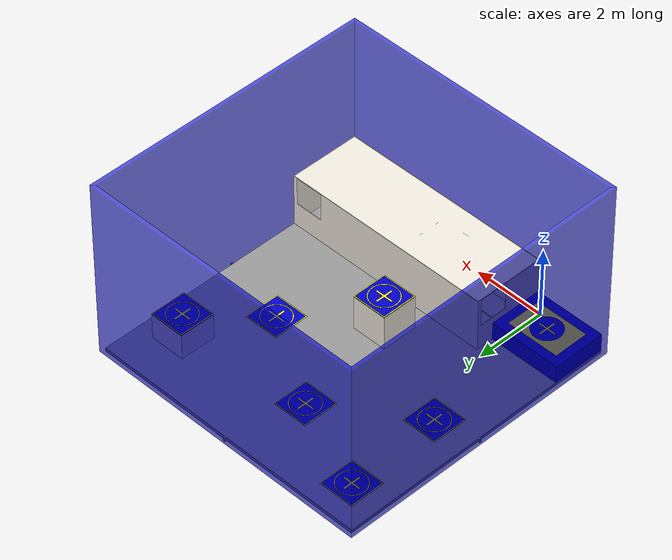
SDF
<sdf version="1.6">
 <world name="default">
  <spherical_coordinates>
   <surface_model>EARTH_WGS84</surface_model>
   <latitude_deg>47.397743</latitude_deg>
   <longitude_deg>8.545594</longitude_deg>
   <elevation>0.0</elevation>
   <heading_deg>0</heading_deg>
  </spherical_coordinates>
  <light type="directional" name="sun">
   <pose>0 0 10 0 0 0</pose>
   <diffuse>0.8 0.8 0.8 1</diffuse>
   <specular>0.2 0.2 0.2 1</specular>
   <attenuation>
    <range>1000</range>
    <constant>0.9</constant>
    <linear>0.01</linear>
    <quadratic>0.001</quadratic>
   </attenuation>
   <direction>-0.5 0.1 -0.9</direction>
  </light>
  <include>
   <uri>file:///home/lmnr31/ros2_ws/src/arena_2025_desenho_3/model.sdf</uri>
   <name>arena_2025_desenho</name>
  </include>
  <physics name="default_physics" type="ode">
   <max_step_size>0.005</max_step_size>
   <real_time_update_rate>200</real_time_update_rate>
  </physics>
 </world>
</sdf>

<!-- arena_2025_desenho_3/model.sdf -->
<sdf version='1.11'>
  <model name='arena_2025_desenho_3'>
    <link name='base_link'>
      <inertial>
        <pose>2.0846047956675839 3.7499959151189981 1.663143852943622 0 0 0</pose>
        <mass>209967.48191385559</mass>
        <inertia>
          <ixx>2447681.3000306399</ixx>
          <ixy>-142412.0459168698</ixy>
          <ixz>-23062.383835287299</ixz>
          <iyy>2426001.3580376571</iyy>
          <iyz>-48729.864840402966</iyz>
          <izz>3761436.7678839881</izz>
        </inertia>
      </inertial>
      <collision name='base_link_collision_collision'>
        <pose>0 0 0 0 0 0</pose>
        <geometry>
          <mesh>
            <scale>0.001 0.001 0.001</scale>
            <uri>meshes/base_link.stl</uri>
          </mesh>
        </geometry>
      </collision>
      <collision name='base_link_fixed_joint_lump__parede1_collision_collision_1'>
        <pose>-1.8502115568123969 -0.041793670335398492 -1.387778780781446e-17 0 0 0</pose>
        <geometry>
          <mesh>
            <scale>0.001 0.001 0.001</scale>
            <uri>meshes/parede1.stl</uri>
          </mesh>
        </geometry>
      </collision>
      <collision name='base_link_fixed_joint_lump__parede4_collision_collision_2'>
        <pose>-1.8502115568123969 -0.041793670335399817 -2.4355517602714372e-15 0 0 0</pose>
        <geometry>
          <mesh>
            <scale>0.001 0.001 0.001</scale>
            <uri>meshes/parede4.stl</uri>
          </mesh>
        </geometry>
      </collision>
      <collision name='base_link_fixed_joint_lump__parede3_collision_collision_3'>
        <pose>-1.8502115568123969 -0.041793670335398943 1.117161918529064e-15 1.224646799147353e-16 -7.4987989133092894e-33 1.224646799147353e-16</pose>
        <geometry>
          <mesh>
            <scale>0.001 0.001 0.001</scale>
            <uri>meshes/parede3.stl</uri>
          </mesh>
        </geometry>
      </collision>
      <collision name='base_link_fixed_joint_lump__parede2_collision_collision_4'>
        <pose>-1.8502115568123969 -0.041793670335398478 -1.387778780781446e-17 0 0 0</pose>
        <geometry>
          <mesh>
            <scale>0.001 0.001 0.001</scale>
            <uri>meshes/parede2.stl</uri>
          </mesh>
        </geometry>
      </collision>
      <collision name='base_link_fixed_joint_lump__Takeoff_Baseazul_collision_collision_5'>
        <pose>-1.8502115568123969 -0.041793670335398492 2.9143354396410359e-16 0 0 0</pose>
        <geometry>
          <mesh>
            <scale>0.001 0.001 0.001</scale>
            <uri>meshes/Takeoff_Baseazul.stl</uri>
          </mesh>
        </geometry>
      </collision>
      <collision name='base_link_fixed_joint_lump__Takeoff_Baseamarelo_collision_collision_6'>
        <pose>-1.8502115568123969 -0.041793670335398492 3.6082248300317588e-16 0 0 0</pose>
        <geometry>
          <mesh>
            <scale>0.001 0.001 0.001</scale>
            <uri>meshes/Takeoff_Baseamarelo.stl</uri>
          </mesh>
        </geometry>
      </collision>
      <collision name='base_link_fixed_joint_lump__casa_paredes_collision_collision_7'>
        <pose>-1.850211556812398 -0.041793670335398492 0 0 0 0</pose>
        <geometry>
          <mesh>
            <scale>0.001 0.001 0.001</scale>
            <uri>meshes/casa_paredes.stl</uri>
          </mesh>
        </geometry>
      </collision>
      <collision name='base_link_fixed_joint_lump__casa_teto_collision_collision_8'>
        <pose>-1.8502115568123949 -0.041793670335397937 1.110223024625157e-16 0 0 0</pose>
        <geometry>
          <mesh>
            <scale>0.001 0.001 0.001</scale>
            <uri>meshes/casa_teto.stl</uri>
          </mesh>
        </geometry>
      </collision>
      <collision name='base_link_fixed_joint_lump__Landing_Basesazul5_collision_collision_9'>
        <pose>-2.8502115568123791 1.4582063296646099 2.9143354396410359e-16 0 0 0</pose>
        <geometry>
          <mesh>
            <scale>0.001 0.001 0.001</scale>
            <uri>meshes/Landing_Basesazul5.stl</uri>
          </mesh>
        </geometry>
      </collision>
      <collision name='base_link_fixed_joint_lump__Landing_Basesamarelo_5_collision_collision_10'>
        <pose>-2.8502115568123969 1.458206329664602 2.9143354396410359e-16 0 0 0</pose>
        <geometry>
          <mesh>
            <scale>0.001 0.001 0.001</scale>
            <uri>meshes/Landing_Basesamarelo_5.stl</uri>
          </mesh>
        </geometry>
      </collision>
      <collision name='base_link_fixed_joint_lump__base_movelzinza1_collision_collision_11'>
        <pose>4.1497884431876093 3.4582063296646179 -0.00099999999999994538 0 0 0</pose>
        <geometry>
          <mesh>
            <scale>0.001 0.001 0.001</scale>
            <uri>meshes/base_movelzinza1.stl</uri>
          </mesh>
        </geometry>
      </collision>
      <collision name='base_link_fixed_joint_lump__Landing_Basesazul1_collision_collision_12'>
        <pose>4.149788443187612 3.458206329664625 1.490116363633831e-11 0 0 0</pose>
        <geometry>
          <mesh>
            <scale>0.001 0.001 0.001</scale>
            <uri>meshes/Landing_Basesazul1.stl</uri>
          </mesh>
        </geometry>
      </collision>
      <collision name='base_link_fixed_joint_lump__Landing_Basesamarelo_1_collision_collision_13'>
        <pose>4.1497884431876164 3.4582063296646361 1.490116363633831e-11 0 0 0</pose>
        <geometry>
          <mesh>
            <scale>0.001 0.001 0.001</scale>
            <uri>meshes/Landing_Basesamarelo_1.stl</uri>
          </mesh>
        </geometry>
      </collision>
      <collision name='base_link_fixed_joint_lump__base_movelzinza2_collision_collision_14'>
        <pose>-2.3502115568123969 -3.541793670335398 -0.00099999999999994538 0 0 0</pose>
        <geometry>
          <mesh>
            <scale>0.001 0.001 0.001</scale>
            <uri>meshes/base_movelzinza2.stl</uri>
          </mesh>
        </geometry>
      </collision>
      <collision name='base_link_fixed_joint_lump__Landing_Basesazul2_collision_collision_15'>
        <pose>-2.3502115568123911 -3.5417936703353892 -0.0010000160932540909 0 0 1.9721522630525321e-31</pose>
        <geometry>
          <mesh>
            <scale>0.001 0.001 0.001</scale>
            <uri>meshes/Landing_Basesazul2.stl</uri>
          </mesh>
        </geometry>
      </collision>
      <collision name='base_link_fixed_joint_lump__Landing_Basesamarelo_2_collision_collision_16'>
        <pose>-2.3502115568123871 -3.5417936703353829 -0.0010000160932540909 0 0 -5.9164567891575999e-31</pose>
        <geometry>
          <mesh>
            <scale>0.001 0.001 0.001</scale>
            <uri>meshes/Landing_Basesamarelo_2.stl</uri>
          </mesh>
        </geometry>
      </collision>
      <collision name='base_link_fixed_joint_lump__Landing_Basesazul6_collision_collision_17'>
        <pose>-3.3502115568123778 4.8702063296646063 -1.5 0 0 0</pose>
        <geometry>
          <mesh>
            <scale>0.001 0.001 0.001</scale>
            <uri>meshes/Landing_Basesazul6.stl</uri>
          </mesh>
        </geometry>
      </collision>
      <collision name='base_link_fixed_joint_lump__Landing_Basesamarelo_6_collision_collision_18'>
        <pose>-3.3502115568123769 4.8702063296646063 -1.5009999999999999 0 0 0</pose>
        <geometry>
          <mesh>
            <scale>0.001 0.001 0.001</scale>
            <uri>meshes/Landing_Basesamarelo_6.stl</uri>
          </mesh>
        </geometry>
      </collision>
      <collision name='base_link_fixed_joint_lump__Landing_Basesazul4_collision_collision_19'>
        <pose>-4.7502115568123973 -0.2417936703353982 2.9143354396410359e-16 0 0 0</pose>
        <geometry>
          <mesh>
            <scale>0.001 0.001 0.001</scale>
            <uri>meshes/Landing_Basesazul4.stl</uri>
          </mesh>
        </geometry>
      </collision>
      <collision name='base_link_fixed_joint_lump__Landing_Basesamarelo_4_collision_collision_20'>
        <pose>-4.7502115568123973 -0.2417936703353982 2.9143354396410359e-16 0 0 0</pose>
        <geometry>
          <mesh>
            <scale>0.001 0.001 0.001</scale>
            <uri>meshes/Landing_Basesamarelo_4.stl</uri>
          </mesh>
        </geometry>
      </collision>
      <collision name='base_link_fixed_joint_lump__Landing_Basesazul3_collision_collision_21'>
        <pose>-2.3502115568123969 0.95820632966460195 2.9143354396410359e-16 0 0 0</pose>
        <geometry>
          <mesh>
            <scale>0.001 0.001 0.001</scale>
            <uri>meshes/Landing_Basesazul3.stl</uri>
          </mesh>
        </geometry>
      </collision>
      <collision name='base_link_fixed_joint_lump__Landing_Basesamarelo_3_collision_collision_22'>
        <pose>-2.3502115568123969 0.95820632966460195 2.7755575615628909e-16 0 0 0</pose>
        <geometry>
          <mesh>
            <scale>0.001 0.001 0.001</scale>
            <uri>meshes/Landing_Basesamarelo_3.stl</uri>
          </mesh>
        </geometry>
      </collision>

      #visuals cores

      <visual name='base_link_visual_visual'>
        <pose>0 0 0 0 0 0</pose>
        <geometry>
          <mesh>
            <scale>0.001 0.001 0.001</scale>
            <uri>meshes/base_link.stl</uri>
          </mesh>
        </geometry>
        <material>
          <ambient>0.4 0.4 0.4 1</ambient>
          <diffuse>0.6 0.6 0.6 1</diffuse>
          <specular>0.8 0.8 0.8 1</specular>
        </material>
      </visual>
      <visual name='base_link_fixed_joint_lump__parede1_visual_visual_1'>
        <pose>-1.8502115568123969 -0.041793670335398492 -1.387778780781446e-17 0 0 0</pose>
        <geometry>
          <mesh>
            <scale>0.001 0.001 0.001</scale>
            <uri>meshes/parede1.stl</uri>
          </mesh>
        </geometry>
        <material>
          <ambient>0.0 0.0 0.5 0.65</ambient>
          <diffuse>0.0 0.0 0.8 0.65</diffuse>
          <specular>0.3 0.3 0.8 0.65</specular>
          <transparency>0.65</transparency>
        </material>
      </visual>
      <visual name='base_link_fixed_joint_lump__parede4_visual_visual_2'>
        <pose>-1.8502115568123969 -0.041793670335399817 -2.4355517602714372e-15 0 0 0</pose>
        <geometry>
          <mesh>
            <scale>0.001 0.001 0.001</scale>
            <uri>meshes/parede4.stl</uri>
          </mesh>
        </geometry>
        <material>
          <ambient>0.0 0.0 0.5 0.65</ambient>
          <diffuse>0.0 0.0 0.8 0.65</diffuse>
          <specular>0.3 0.3 0.8 0.65</specular>
          <transparency>0.65</transparency>
        </material>
      </visual>
      <visual name='base_link_fixed_joint_lump__parede3_visual_visual_3'>
        <pose>-1.8502115568123969 -0.041793670335398943 1.117161918529064e-15 1.224646799147353e-16 -7.4987989133092894e-33 1.224646799147353e-16</pose>
        <geometry>
          <mesh>
            <scale>0.001 0.001 0.001</scale>
            <uri>meshes/parede3.stl</uri>
          </mesh>
        </geometry>
        <material>
          <ambient>0.0 0.0 0.5 0.65</ambient>
          <diffuse>0.0 0.0 0.8 0.65</diffuse>
          <specular>0.3 0.3 0.8 0.65</specular>
          <transparency>0.65</transparency>
        </material>
      </visual>
      <visual name='base_link_fixed_joint_lump__parede2_visual_visual_4'>
        <pose>-1.8502115568123969 -0.041793670335398478 -1.387778780781446e-17 0 0 0</pose>
        <geometry>
          <mesh>
            <scale>0.001 0.001 0.001</scale>
            <uri>meshes/parede2.stl</uri>
          </mesh>
        </geometry>
        <material>
          <ambient>0.0 0.0 0.5 0.65</ambient>
          <diffuse>0.0 0.0 0.8 0.65</diffuse>
          <specular>0.3 0.3 0.8 0.65</specular>
          <transparency>0.65</transparency>
        </material>
      </visual>
      <visual name='base_link_fixed_joint_lump__Takeoff_Baseazul_visual_visual_5'>
        <pose>-1.8502115568123969 -0.041793670335398492 2.9143354396410359e-16 0 0 0</pose>
        <geometry>
          <mesh>
            <scale>0.001 0.001 0.001</scale>
            <uri>meshes/Takeoff_Baseazul.stl</uri>
          </mesh>
        </geometry>
        <material>
          <ambient>0.0 0.0 0.5 1</ambient>
          <diffuse>0.0 0.0 0.8 1</diffuse>
          <specular>0.3 0.3 0.8 1</specular>
        </material>
      </visual>
      <visual name='base_link_fixed_joint_lump__Takeoff_Baseamarelo_visual_visual_6'>
        <pose>-1.8502115568123969 -0.041793670335398492 3.6082248300317588e-16 0 0 0</pose>
        <geometry>
          <mesh>
            <scale>0.001 0.001 0.001</scale>
            <uri>meshes/Takeoff_Baseamarelo.stl</uri>
          </mesh>
        </geometry>
        <material>
          <ambient>0.8 0.8 0.0 1</ambient>
          <diffuse>1.0 1.0 0.0 1</diffuse>
           <specular>0.8 0.8 0.3 1</specular>
        </material>
      </visual>
      <visual name='base_link_fixed_joint_lump__casa_paredes_visual_visual_7'>
        <pose>-1.850211556812398 -0.041793670335398492 0 0 0 0</pose>
        <geometry>
          <mesh>
            <scale>0.001 0.001 0.001</scale>
            <uri>meshes/casa_paredes.stl</uri>
          </mesh>
        </geometry>
        <material>
          <ambient>0.92 0.90 0.85 1</ambient>
          <diffuse>0.94 0.92 0.87 1</diffuse>
          <specular>0.14 0.14 0.13 1</specular>
        </material>
      </visual>
      <visual name='base_link_fixed_joint_lump__casa_teto_visual_visual_8'>
        <pose>-1.8502115568123949 -0.041793670335397937 1.110223024625157e-16 0 0 0</pose>
        <geometry>
          <mesh>
            <scale>0.001 0.001 0.001</scale>
            <uri>meshes/casa_teto.stl</uri>
          </mesh>
        </geometry>
        <material>
          <ambient>0.92 0.90 0.85 1</ambient>
          <diffuse>0.94 0.92 0.87 1</diffuse>
          <specular>0.14 0.14 0.13 1</specular>
        </material>
      </visual>
      <visual name='base_link_fixed_joint_lump__Landing_Basesazul5_visual_visual_9'>
        <pose>-2.8502115568123791 1.4582063296646099 2.9143354396410359e-16 0 0 0</pose>
        <geometry>
          <mesh>
            <scale>0.001 0.001 0.001</scale>
            <uri>meshes/Landing_Basesazul5.stl</uri>
          </mesh>
        </geometry>
        <material>
          <ambient>0.0 0.0 0.5 1</ambient>
          <diffuse>0.0 0.0 0.8 1</diffuse>
          <specular>0.3 0.3 0.8 1</specular>
        </material>
      </visual>
      <visual name='base_link_fixed_joint_lump__Landing_Basesamarelo_5_visual_visual_10'>
        <pose>-2.8502115568123969 1.458206329664602 2.9143354396410359e-16 0 0 0</pose>
        <geometry>
          <mesh>
            <scale>0.001 0.001 0.001</scale>
            <uri>meshes/Landing_Basesamarelo_5.stl</uri>
          </mesh>
        </geometry>
        <material>
          <ambient>0.8 0.8 0.0 1</ambient>
          <diffuse>1.0 1.0 0.0 1</diffuse>
           <specular>0.8 0.8 0.3 1</specular>
        </material>
      </visual>
      <visual name='base_link_fixed_joint_lump__base_movelzinza1_visual_visual_11'>
        <pose>4.1497884431876093 3.4582063296646179 -0.00099999999999994538 0 0 0</pose>
        <geometry>
          <mesh>
            <scale>0.001 0.001 0.001</scale>
            <uri>meshes/base_movelzinza1.stl</uri>
          </mesh>
        </geometry>
        <material>
          <ambient>0.92 0.90 0.85 1</ambient>
          <diffuse>0.94 0.92 0.87 1</diffuse>
          <specular>0.14 0.14 0.13 1</specular>
        </material>
      </visual>
      <visual name='base_link_fixed_joint_lump__Landing_Basesazul1_visual_visual_12'>
        <pose>4.149788443187612 3.458206329664625 1.490116363633831e-11 0 0 0</pose>
        <geometry>
          <mesh>
            <scale>0.001 0.001 0.001</scale>
            <uri>meshes/Landing_Basesazul1.stl</uri>
          </mesh>
        </geometry>
        <material>
          <ambient>0.0 0.0 0.5 1</ambient>
          <diffuse>0.0 0.0 0.8 1</diffuse>
          <specular>0.3 0.3 0.8 1</specular>
        </material>
      </visual>
      <visual name='base_link_fixed_joint_lump__Landing_Basesamarelo_1_visual_visual_13'>
        <pose>4.1497884431876164 3.4582063296646361 1.490116363633831e-11 0 0 0</pose>
        <geometry>
          <mesh>
            <scale>0.001 0.001 0.001</scale>
            <uri>meshes/Landing_Basesamarelo_1.stl</uri>
          </mesh>
        </geometry>
        <material>
          <ambient>0.8 0.8 0.0 1</ambient>
          <diffuse>1.0 1.0 0.0 1</diffuse>
           <specular>0.8 0.8 0.3 1</specular>
        </material>
      </visual>
      <visual name='base_link_fixed_joint_lump__base_movelzinza2_visual_visual_14'>
        <pose>-2.3502115568123969 -3.541793670335398 -0.00099999999999994538 0 0 0</pose>
        <geometry>
          <mesh>
            <scale>0.001 0.001 0.001</scale>
            <uri>meshes/base_movelzinza2.stl</uri>
          </mesh>
        </geometry>
        <material>
          <ambient>0.92 0.90 0.85 1</ambient>
          <diffuse>0.94 0.92 0.87 1</diffuse>
          <specular>0.14 0.14 0.13 1</specular>
        </material>
      </visual>
      <visual name='base_link_fixed_joint_lump__Landing_Basesazul2_visual_visual_15'>
        <pose>-2.3502115568123911 -3.5417936703353892 -0.0010000160932540909 0 0 1.9721522630525321e-31</pose>
        <geometry>
          <mesh>
            <scale>0.001 0.001 0.001</scale>
            <uri>meshes/Landing_Basesazul2.stl</uri>
          </mesh>
        </geometry>
        <material>
          <ambient>0.0 0.0 0.5 1</ambient>
          <diffuse>0.0 0.0 0.8 1</diffuse>
          <specular>0.3 0.3 0.8 1</specular>
        </material>
      </visual>
      <visual name='base_link_fixed_joint_lump__Landing_Basesamarelo_2_visual_visual_16'>
        <pose>-2.3502115568123871 -3.5417936703353829 -0.0010000160932540909 0 0 -5.9164567891575999e-31</pose>
        <geometry>
          <mesh>
            <scale>0.001 0.001 0.001</scale>
            <uri>meshes/Landing_Basesamarelo_2.stl</uri>
          </mesh>
        </geometry>
        <material>
          <ambient>0.8 0.8 0.0 1</ambient>
          <diffuse>1.0 1.0 0.0 1</diffuse>
           <specular>0.8 0.8 0.3 1</specular>
        </material>
      </visual>
      <visual name='base_link_fixed_joint_lump__Landing_Basesazul6_visual_visual_17'>
        <pose>-3.3502115568123778 4.8702063296646063 -1.5 0 0 0</pose>
        <geometry>
          <mesh>
            <scale>0.001 0.001 0.001</scale>
            <uri>meshes/Landing_Basesazul6.stl</uri>
          </mesh>
        </geometry>
        <material>
          <ambient>0.0 0.0 0.5 1</ambient>
          <diffuse>0.0 0.0 0.8 1</diffuse>
          <specular>0.3 0.3 0.8 1</specular>
        </material>
      </visual>
      <visual name='base_link_fixed_joint_lump__Landing_Basesamarelo_6_visual_visual_18'>
        <pose>-3.3502115568123769 4.8702063296646063 -1.5009999999999999 0 0 0</pose>
        <geometry>
          <mesh>
            <scale>0.001 0.001 0.001</scale>
            <uri>meshes/Landing_Basesamarelo_6.stl</uri>
          </mesh>
        </geometry>
        <material>
          <ambient>0.8 0.8 0.0 1</ambient>
          <diffuse>1.0 1.0 0.0 1</diffuse>
           <specular>0.8 0.8 0.3 1</specular>
        </material>
      </visual>
      <visual name='base_link_fixed_joint_lump__Landing_Basesazul4_visual_visual_19'>
        <pose>-4.7502115568123973 -0.2417936703353982 2.9143354396410359e-16 0 0 0</pose>
        <geometry>
          <mesh>
            <scale>0.001 0.001 0.001</scale>
            <uri>meshes/Landing_Basesazul4.stl</uri>
          </mesh>
        </geometry>
        <material>
          <ambient>0.0 0.0 0.5 1</ambient>
          <diffuse>0.0 0.0 0.8 1</diffuse>
          <specular>0.3 0.3 0.8 1</specular>
        </material>
      </visual>
      <visual name='base_link_fixed_joint_lump__Landing_Basesamarelo_4_visual_visual_20'>
        <pose>-4.7502115568123973 -0.2417936703353982 2.9143354396410359e-16 0 0 0</pose>
        <geometry>
          <mesh>
            <scale>0.001 0.001 0.001</scale>
            <uri>meshes/Landing_Basesamarelo_4.stl</uri>
          </mesh>
        </geometry>
        <material>
          <ambient>0.8 0.8 0.0 1</ambient>
          <diffuse>1.0 1.0 0.0 1</diffuse>
           <specular>0.8 0.8 0.3 1</specular>
        </material>
      </visual>
      <visual name='base_link_fixed_joint_lump__Landing_Basesazul3_visual_visual_21'>
        <pose>-2.3502115568123969 0.95820632966460195 2.9143354396410359e-16 0 0 0</pose>
        <geometry>
          <mesh>
            <scale>0.001 0.001 0.001</scale>
            <uri>meshes/Landing_Basesazul3.stl</uri>
          </mesh>
        </geometry>
        <material>
          <ambient>0.0 0.0 0.5 1</ambient>
          <diffuse>0.0 0.0 0.8 1</diffuse>
          <specular>0.3 0.3 0.8 1</specular>
        </material>
      </visual>
      <visual name='base_link_fixed_joint_lump__Landing_Basesamarelo_3_visual_visual_22'>
        <pose>-2.3502115568123969 0.95820632966460195 2.7755575615628909e-16 0 0 0</pose>
        <geometry>
          <mesh>
            <scale>0.001 0.001 0.001</scale>
            <uri>meshes/Landing_Basesamarelo_3.stl</uri>
          </mesh>
        </geometry>
        <material>
          <ambient>0.8 0.8 0.0 1</ambient>
          <diffuse>1.0 1.0 0.0 1</diffuse>
           <specular>0.8 0.8 0.3 1</specular>
        </material>
      </visual>
    </link>
    <frame name='base_link_Rígido-31' attached_to='base_link'>
      <pose>-1.900211556812397 3.958206329664602 0.050000000000000051 0 -1.5707963267948966 0</pose>
    </frame>
    <frame name='parede1' attached_to='base_link_Rígido-31'>
      <pose>0 0 0 0 0 0</pose>
    </frame>
    <frame name='base_link_Rígido-32' attached_to='base_link'>
      <pose>2.1497884431876031 8.0082063296646009 0.050000000000000051 -1.5707963267948959 0 0</pose>
    </frame>
    <frame name='parede4' attached_to='base_link_Rígido-32'>
      <pose>0 0 0 0 0 0</pose>
    </frame>
    <frame name='base_link_Rígido-33' attached_to='base_link'>
      <pose>6.1997884431876038 3.958206319664602 0.050000000000000051 -3.1415926535897931 -1.5707963267948966 0</pose>
    </frame>
    <frame name='parede3' attached_to='base_link_Rígido-33'>
      <pose>0 0 0 0 0 0</pose>
    </frame>
    <frame name='base_link_Rígido-34' attached_to='base_link'>
      <pose>2.1497884431876031 -0.091793670335398481 0.050000000000000051 1.5707963267948959 0 0</pose>
    </frame>
    <frame name='parede2' attached_to='base_link_Rígido-34'>
      <pose>0 0 0 0 0 0</pose>
    </frame>
    <frame name='Takeoff_Baseazul_Rígido-44' attached_to='Takeoff_Baseazul'>
      <pose>0 0 0.49099999999999999 0 0 0</pose>
    </frame>
    <frame name='Takeoff_Baseamarelo' attached_to='Takeoff_Baseazul_Rígido-44'>
      <pose>0 0 0 0 0 0</pose>
    </frame>
    <frame name='base_link_Rígido-35' attached_to='base_link'>
      <pose>-0.85021155681239691 0.70820632966460151 0.09900000000000006 0 0 0</pose>
    </frame>
    <frame name='Takeoff_Baseazul' attached_to='base_link_Rígido-35'>
      <pose>0 0 0 0 0 0</pose>
    </frame>
    <frame name='casa_paredes_Rígido-42' attached_to='casa_paredes'>
      <pose>0 0 1.522 0 0 0</pose>
    </frame>
    <frame name='casa_teto' attached_to='casa_paredes_Rígido-42'>
      <pose>0 0 0 0 0 0</pose>
    </frame>
    <frame name='base_link_Rígido-41' attached_to='base_link'>
      <pose>3.1377884731876029 0.95820178966460146 0.073000000000000065 0 0 0</pose>
    </frame>
    <frame name='casa_paredes' attached_to='base_link_Rígido-41'>
      <pose>0 0 0 0 0 0</pose>
    </frame>
    <frame name='Landing_Basesazul5_Rígido-49' attached_to='Landing_Basesazul5'>
      <pose>0 0 0.0050000000000000001 0 0 0</pose>
    </frame>
    <frame name='Landing_Basesamarelo_5' attached_to='Landing_Basesazul5_Rígido-49'>
      <pose>0 0 0 0 0 0</pose>
    </frame>
    <frame name='base_link_Rígido-62' attached_to='base_link'>
      <pose>4.1497884431876031 4.458206329664602 0.09900000000000006 0 0 0</pose>
    </frame>
    <frame name='Landing_Basesazul5' attached_to='base_link_Rígido-62'>
      <pose>0 0 0 0 0 0</pose>
    </frame>
    <frame name='Landing_Basesazul1_Rígido-57' attached_to='Landing_Basesazul1'>
      <pose>0 0 0.01099999999999994 0 0 0</pose>
    </frame>
    <frame name='Landing_Basesamarelo_1' attached_to='Landing_Basesazul1_Rígido-57'>
      <pose>0 0 0 0 0 0</pose>
    </frame>
    <frame name='base_movelzinza1_Rígido-56' attached_to='base_movelzinza1'>
      <pose>0 0 0.72999999999999998 0 0 0</pose>
    </frame>
    <frame name='Landing_Basesazul1' attached_to='base_movelzinza1_Rígido-56'>
      <pose>0 0 0 0 0 0</pose>
    </frame>
    <frame name='base_link_Rígido-63' attached_to='base_link'>
      <pose>5.149788443187604 6.458206329664602 0.09900000000000006 0 0 0</pose>
    </frame>
    <frame name='base_movelzinza1' attached_to='base_link_Rígido-63'>
      <pose>0 0 0 0 0 0</pose>
    </frame>
    <frame name='Landing_Basesazul2_Rígido-61' attached_to='Landing_Basesazul2'>
      <pose>0 0 0.0099999800000000506 0 0 0</pose>
    </frame>
    <frame name='Landing_Basesamarelo_2' attached_to='Landing_Basesazul2_Rígido-61'>
      <pose>0 0 0 0 0 0</pose>
    </frame>
    <frame name='base_movelzinza2_Rígido-60' attached_to='base_movelzinza2'>
      <pose>0 0 0.97999999999999998 0 0 0</pose>
    </frame>
    <frame name='Landing_Basesazul2' attached_to='base_movelzinza2_Rígido-60'>
      <pose>0 0 0 0 0 0</pose>
    </frame>
    <frame name='base_link_Rígido-64' attached_to='base_link'>
      <pose>2.1497884431876031 2.958206329664602 0.09900000000000006 0 0 0</pose>
    </frame>
    <frame name='base_movelzinza2' attached_to='base_link_Rígido-64'>
      <pose>0 0 0 0 0 0</pose>
    </frame>
    <frame name='Landing_Basesazul6_Rígido-50' attached_to='Landing_Basesazul6'>
      <pose>0 0 0.0050000000000000001 0 0 0</pose>
    </frame>
    <frame name='Landing_Basesamarelo_6' attached_to='Landing_Basesazul6_Rígido-50'>
      <pose>0 0 0 0 0 0</pose>
    </frame>
    <frame name='base_link_Rígido-65' attached_to='base_link'>
      <pose>1.6497884431876031 5.958206329664602 0.09900000000000006 0 0 0</pose>
    </frame>
    <frame name='Landing_Basesazul6' attached_to='base_link_Rígido-65'>
      <pose>0 0 0 0 0 0</pose>
    </frame>
    <frame name='Landing_Basesazul4_Rígido-48' attached_to='Landing_Basesazul4'>
      <pose>0 0 0.0050000000000000001 0 0 0</pose>
    </frame>
    <frame name='Landing_Basesamarelo_4' attached_to='Landing_Basesazul4_Rígido-48'>
      <pose>0 0 0 0 0 0</pose>
    </frame>
    <frame name='base_link_Rígido-66' attached_to='base_link'>
      <pose>-0.75021155681239693 4.2582063296646018 0.09900000000000006 0 0 0</pose>
    </frame>
    <frame name='Landing_Basesazul4' attached_to='base_link_Rígido-66'>
      <pose>0 0 0 0 0 0</pose>
    </frame>
    <frame name='Landing_Basesazul3_Rígido-46' attached_to='Landing_Basesazul3'>
      <pose>0 0 0.0059999999999999967 0 0 0</pose>
    </frame>
    <frame name='Landing_Basesamarelo_3' attached_to='Landing_Basesazul3_Rígido-46'>
      <pose>0 0 0 0 0 0</pose>
    </frame>
    <frame name='base_link_Rígido-67' attached_to='base_link'>
      <pose>-0.85021155681239691 6.958206329664602 0.09900000000000006 0 0 0</pose>
    </frame>
    <frame name='Landing_Basesazul3' attached_to='base_link_Rígido-67'>
      <pose>0 0 0 0 0 0</pose>
    </frame>
  </model>
</sdf>
